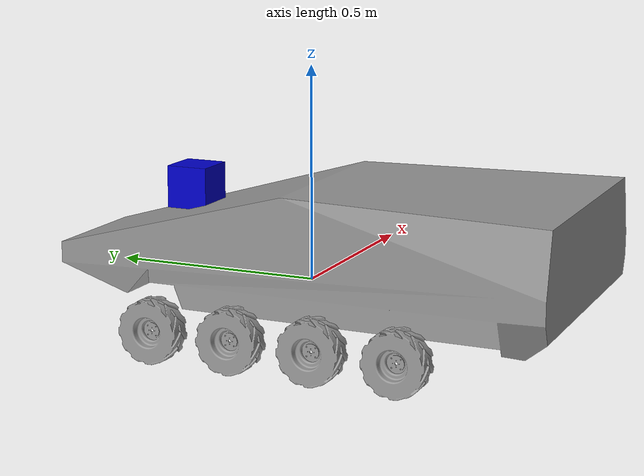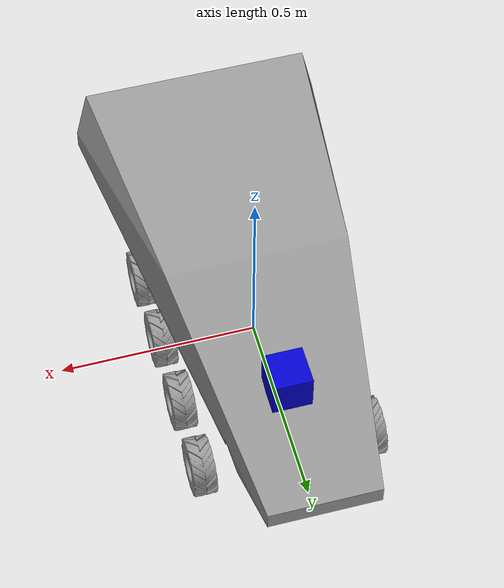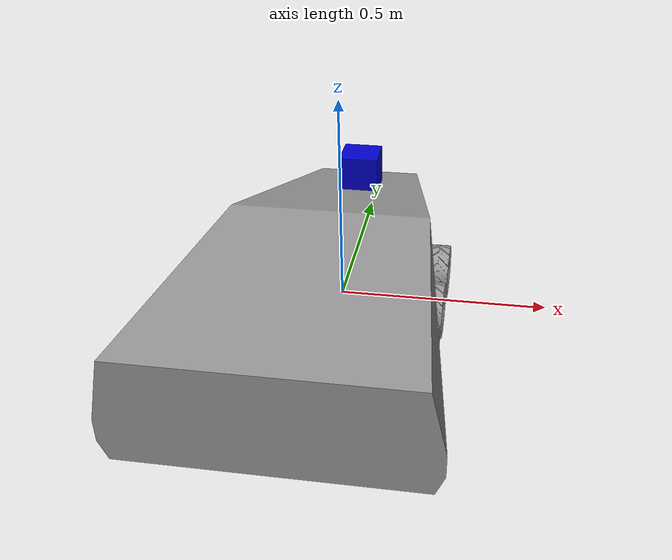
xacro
<?xml version="1.0"?>
<robot name="bot" xmlns:xacro="http://www.ros.org/wiki/xacro">

<xacro:property name="wheelRadius" value="0.0732"/>
<xacro:property name="wheelLength" value="0.05575"/>
<xacro:property name="leftWheel" value="left_wheel"/>
<xacro:property name="rightWheel" value="right_wheel"/>

<xacro:macro name="wheel" params="side num reflect xv yv zv">
  <link name="${side}_${num}">
    <visual>
      <origin rpy="0 1.57079632679 0" xyz="${xv} ${yv} ${zv}"/>
      <geometry>
	<mesh filename="package://bot_description/meshes/wheel.dae" />
      </geometry>
      <material name="Grey"/>
    </visual>
    <collision>
	<origin rpy="0 1.57079632679 0" xyz="${xv} ${yv} ${zv}"/>
        <geometry>
         <mesh filename="package://bot_description/meshes/wheel.dae" />
      </geometry>
    </collision>
    <inertial>
      <mass value = "0.1" />
      <inertia ixx="0.00143" ixy="0.0" ixz="0.0" iyy="0.00143" iyz="0.0" izz="0.00125"/>
    </inertial>

</link>

  <joint name="${side}_${num}_joint" type="continuous">
    <axis xyz="0.05 0 1" />
    <limit effort="10000.0" velocity="100"/>
    <parent link="base_link"/>
    <child link="${side}_${num}"/>
    <origin rpy="0 ${3.14592/2} 3.14159265359" xyz="${0.2 * reflect} ${0.3 - (0.2 * num)} -0.10"/>
  </joint>

  <gazebo reference="${side}_${num}">
    <mu1 value="100.0"/>
    <mu2 value="50.0"/>
    <kp value="10000000.0" />
    <kd value="1.0" />
    <material>Gazebo/Grey</material>
  </gazebo>
</xacro:macro>

<xacro:macro name="transmissions" params="num side">

    <transmission name="${side}_${num}_trans">
      <type>transmission_interface/SimpleTransmission</type>
      <actuator name="${side}_${num}_motor">
        <mechanicalReduction>1</mechanicalReduction>
        <hardwareInterface>hardware_interface/VelocityJointInterface</hardwareInterface>
      </actuator>
      <joint name="${side}_${num}_joint">
        <hardwareInterface>hardware_interface/VelocityJointInterface</hardwareInterface>
      </joint>
    </transmission>
</xacro:macro>
<!-- ============================= SENSORS ========================================= -->
<link name="hokuyo_link">
        <visual>
			<origin rpy="0 0 0" xyz="0 0 0"/>
            <geometry>
                <box size="0.1 0.1 0.1"/>
            </geometry>
			<material name="blue"/>
        </visual>
    </link>

	<joint name="hokuyo_joint" type="fixed">
		<parent link="base_link"/>
		<child link="hokuyo_link"/>
		<origin xyz="0.0 0.3 0.20" rpy="0 0 1.572" />
	</joint>

	<gazebo reference="hokuyo_link">
    <material>Gazebo/White</material>
	    <sensor name="head_hokuyo_sensor" type="ray">
	      <pose>0.05 0 0 0 0 0</pose>
	      <visualize>true</visualize>
	      <update_rate>40</update_rate>
	      <ray>
	        <scan>
	          <horizontal>
	            <samples>720</samples>
	            <resolution>1</resolution>
	            <min_angle>-1.570796</min_angle>
	            <max_angle>1.570796</max_angle>
	          </horizontal>
	        </scan>
	        <range>
	          <min>0.10</min>
	          <max>10.0</max>
	          <resolution>0.001</resolution>
	        </range>
	      </ray>
	      <plugin filename="libgazebo_ros_laser.so" name="gazebo_ros_head_hokuyo_controller">
	        <topicName>/scan</topicName>
	        <frameName>hokuyo_link</frameName>
	      </plugin>
	    </sensor>
  	</gazebo>

  <material name="blue">
    <color rgba="0 0 0.8 1"/>
</material>

  <material name="white">
    <color rgba="1 1 1 1"/>
  </material>

 <material name="black">
    <color rgba="0 0 0 1"/>
  </material>

  <link name="base_link">
    <visual>
      <geometry>
        <mesh filename="package://bot_description/meshes/carfullblended.dae"/>
      </geometry>
      <origin rpy="0 0 3.14159265359" xyz="-0.01 -0.05 -0.08"/>
      <material name="grey"/>
    </visual>
    <collision>
      <geometry>
        <mesh filename="package://bot_description/meshes/carfullblended.dae"/>
      </geometry>
      <origin rpy="0 0 3.14159265359" xyz="-0.01 -0.05 -0.08"/>
    </collision>

  </link>

  <link name="dummy_link">
    <inertial>
      <mass value = "1" />
      <inertia ixx="0.05666" ixy="0.0" ixz="0.0" iyy="0.00666" iyz="0.0" izz="0.05666"/>
    </inertial>
  </link>

  <joint name="dummy_joint" type="fixed">
    <parent link="base_link"/>
    <child link="dummy_link"/>
    <origin rpy="0 0 0" xyz="0 0 0"/>
  </joint>

<xacro:wheel side="left_wheel" num="0" reflect="-1" xv="0" yv="0" zv="0.02"/>
<xacro:wheel side="left_wheel" num="1" reflect="-1" xv="0" yv="0" zv="0.02"/>
<xacro:wheel side="left_wheel" num="2" reflect="-1" xv="0" yv="0" zv="0.02"/>
<xacro:wheel side="left_wheel" num="3" reflect="-1" xv="0" yv="0" zv="0.02"/>
<xacro:wheel side="right_wheel" num="0" reflect="1" xv="0" yv="0" zv="-0.02"/>
<xacro:wheel side="right_wheel" num="1" reflect="1" xv="0" yv="0" zv="-0.02"/>
<xacro:wheel side="right_wheel" num="2" reflect="1" xv="0" yv="0" zv="-0.02"/>
<xacro:wheel side="right_wheel" num="3" reflect="1" xv="0" yv="0" zv="-0.02"/>

  <gazebo>
  <plugin name="gazebo_ros_control" filename="libgazebo_ros_control.so">
    <robotNamespace>/bot</robotNamespace>
  </plugin>

  <plugin name="p3d_base_controller" filename="libgazebo_ros_p3d.so">
    <alwaysOn>true</alwaysOn>
    <updateRate>50.0</updateRate>
    <bodyName>base_link</bodyName>
    <topicName>/odom</topicName>
    <gaussianNoise>0.01</gaussianNoise>
    <frameName>world</frameName>
    <xyzOffsets>0 0 0</xyzOffsets>
    <rpyOffsets>0 0 0</rpyOffsets>
  </plugin>

  </gazebo>

<xacro:transmissions side="left_wheel" num="0"/>
<xacro:transmissions side="left_wheel" num="1"/>
<xacro:transmissions side="left_wheel" num="2"/>
<xacro:transmissions side="left_wheel" num="3"/>
<xacro:transmissions side="right_wheel" num="0"/>
<xacro:transmissions side="right_wheel" num="1"/>
<xacro:transmissions side="right_wheel" num="2"/>
<xacro:transmissions side="right_wheel" num="3"/>

</robot>
